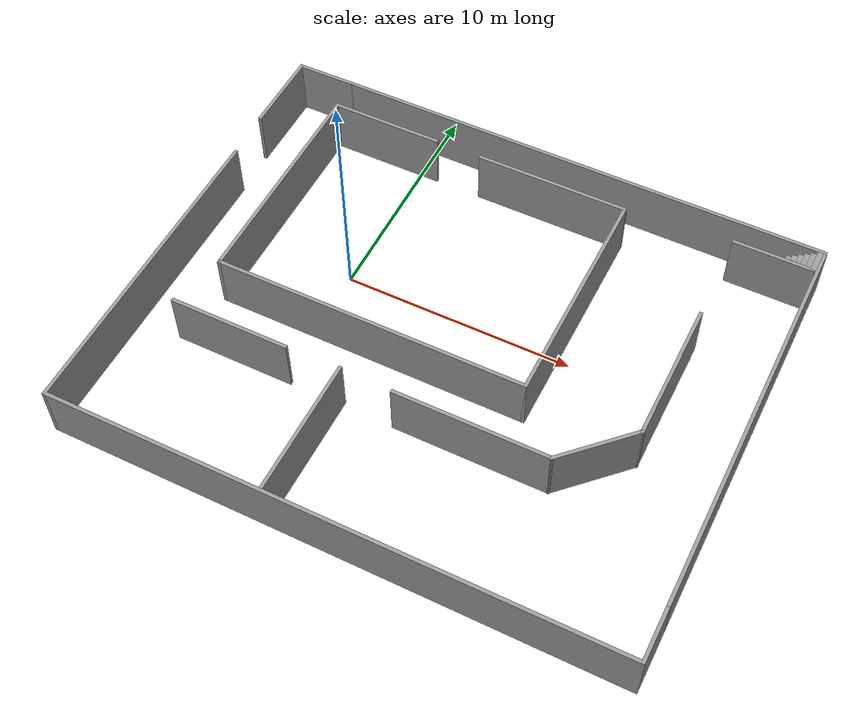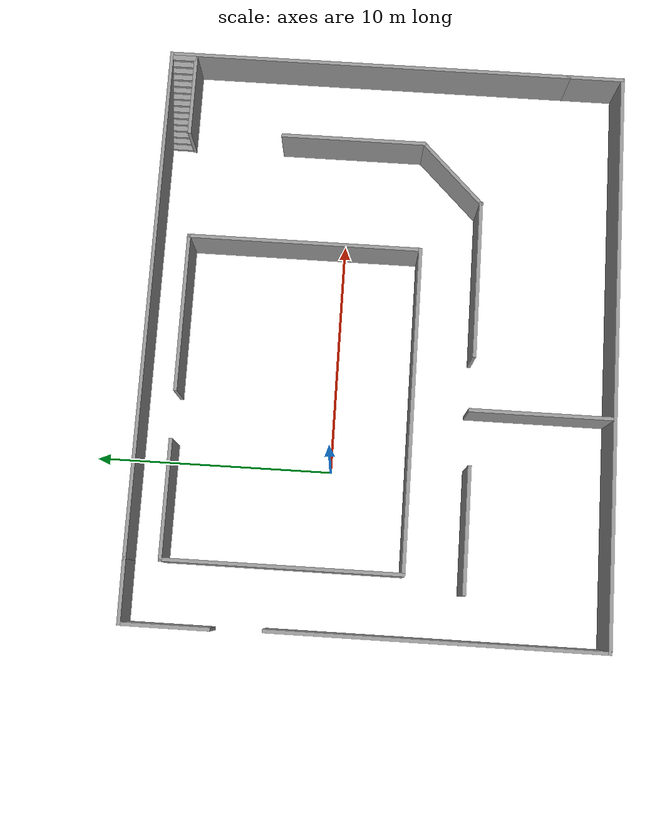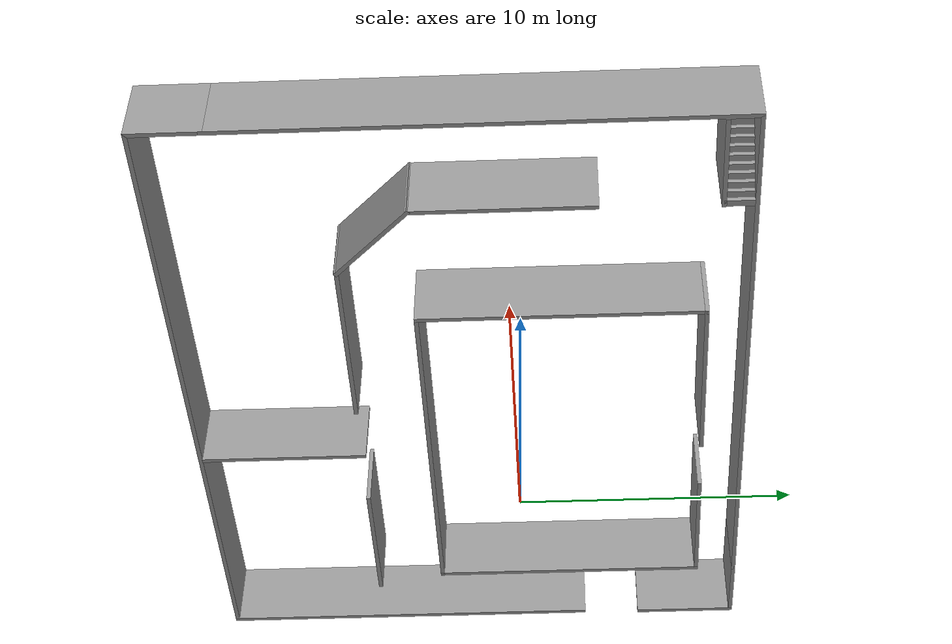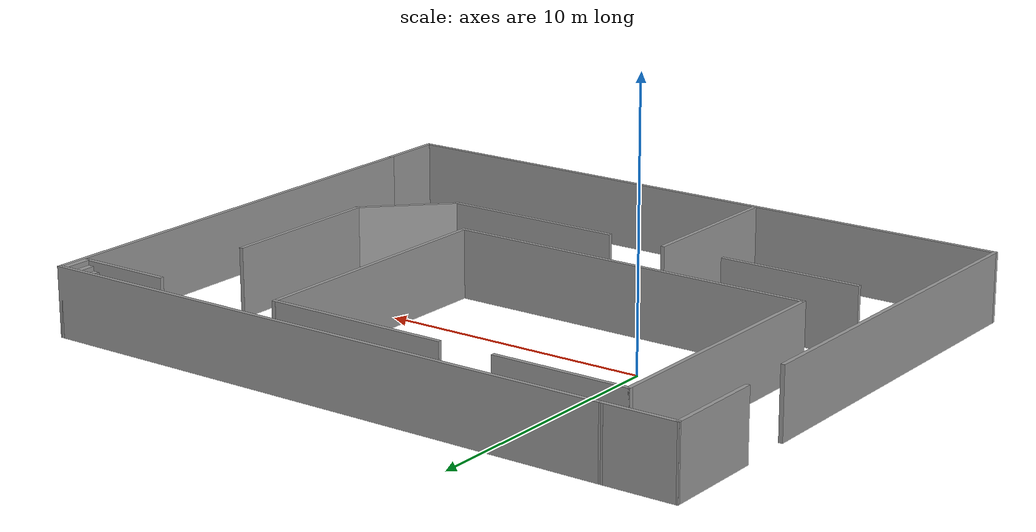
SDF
<?xml version='1.0'?>
<sdf version='1.7'>
  <model name='myworld1'>
    <pose>5.43751 -1.74851 0 0 -0 0</pose>
    <link name='Stairs_0'>
      <visual name='Stairs_0_Visual_0'>
        <pose>8.76424 9.2881 0.083333 0 -0 1.5708</pose>
        <geometry>
          <box>
            <size>1 0.233333 0.166667</size>
          </box>
        </geometry>
        <material>
          <script>
            <uri>file://media/materials/scripts/gazebo.material</uri>
            <name>Gazebo/Grey</name>
          </script>
          <ambient>1 1 1 1</ambient>
        </material>
        <meta>
          <layer>0</layer>
        </meta>
      </visual>
      <collision name='Stairs_0_Collision_0'>
        <geometry>
          <box>
            <size>1 0.233333 0.166667</size>
          </box>
        </geometry>
        <pose>8.76424 9.2881 0.083333 0 -0 1.5708</pose>
      </collision>
      <visual name='Stairs_0_Visual_1'>
        <pose>8.99757 9.2881 0.25 0 -0 1.5708</pose>
        <geometry>
          <box>
            <size>1 0.233333 0.166667</size>
          </box>
        </geometry>
        <material>
          <script>
            <uri>file://media/materials/scripts/gazebo.material</uri>
            <name>Gazebo/Grey</name>
          </script>
          <ambient>1 1 1 1</ambient>
        </material>
        <meta>
          <layer>0</layer>
        </meta>
      </visual>
      <collision name='Stairs_0_Collision_1'>
        <geometry>
          <box>
            <size>1 0.233333 0.166667</size>
          </box>
        </geometry>
        <pose>8.99757 9.2881 0.25 0 -0 1.5708</pose>
      </collision>
      <visual name='Stairs_0_Visual_2'>
        <pose>9.23091 9.2881 0.416667 0 -0 1.5708</pose>
        <geometry>
          <box>
            <size>1 0.233333 0.166667</size>
          </box>
        </geometry>
        <material>
          <script>
            <uri>file://media/materials/scripts/gazebo.material</uri>
            <name>Gazebo/Grey</name>
          </script>
          <ambient>1 1 1 1</ambient>
        </material>
        <meta>
          <layer>0</layer>
        </meta>
      </visual>
      <collision name='Stairs_0_Collision_2'>
        <geometry>
          <box>
            <size>1 0.233333 0.166667</size>
          </box>
        </geometry>
        <pose>9.23091 9.2881 0.416667 0 -0 1.5708</pose>
      </collision>
      <visual name='Stairs_0_Visual_3'>
        <pose>9.46424 9.2881 0.583333 0 -0 1.5708</pose>
        <geometry>
          <box>
            <size>1 0.233333 0.166667</size>
          </box>
        </geometry>
        <material>
          <script>
            <uri>file://media/materials/scripts/gazebo.material</uri>
            <name>Gazebo/Grey</name>
          </script>
          <ambient>1 1 1 1</ambient>
        </material>
        <meta>
          <layer>0</layer>
        </meta>
      </visual>
      <collision name='Stairs_0_Collision_3'>
        <geometry>
          <box>
            <size>1 0.233333 0.166667</size>
          </box>
        </geometry>
        <pose>9.46424 9.2881 0.583333 0 -0 1.5708</pose>
      </collision>
      <visual name='Stairs_0_Visual_4'>
        <pose>9.69758 9.2881 0.75 0 -0 1.5708</pose>
        <geometry>
          <box>
            <size>1 0.233333 0.166667</size>
          </box>
        </geometry>
        <material>
          <script>
            <uri>file://media/materials/scripts/gazebo.material</uri>
            <name>Gazebo/Grey</name>
          </script>
          <ambient>1 1 1 1</ambient>
        </material>
        <meta>
          <layer>0</layer>
        </meta>
      </visual>
      <collision name='Stairs_0_Collision_4'>
        <geometry>
          <box>
            <size>1 0.233333 0.166667</size>
          </box>
        </geometry>
        <pose>9.69758 9.2881 0.75 0 -0 1.5708</pose>
      </collision>
      <visual name='Stairs_0_Visual_5'>
        <pose>9.93091 9.2881 0.916667 0 -0 1.5708</pose>
        <geometry>
          <box>
            <size>1 0.233333 0.166667</size>
          </box>
        </geometry>
        <material>
          <script>
            <uri>file://media/materials/scripts/gazebo.material</uri>
            <name>Gazebo/Grey</name>
          </script>
          <ambient>1 1 1 1</ambient>
        </material>
        <meta>
          <layer>0</layer>
        </meta>
      </visual>
      <collision name='Stairs_0_Collision_5'>
        <geometry>
          <box>
            <size>1 0.233333 0.166667</size>
          </box>
        </geometry>
        <pose>9.93091 9.2881 0.916667 0 -0 1.5708</pose>
      </collision>
      <visual name='Stairs_0_Visual_6'>
        <pose>10.1642 9.2881 1.08333 0 -0 1.5708</pose>
        <geometry>
          <box>
            <size>1 0.233333 0.166667</size>
          </box>
        </geometry>
        <material>
          <script>
            <uri>file://media/materials/scripts/gazebo.material</uri>
            <name>Gazebo/Grey</name>
          </script>
          <ambient>1 1 1 1</ambient>
        </material>
        <meta>
          <layer>0</layer>
        </meta>
      </visual>
      <collision name='Stairs_0_Collision_6'>
        <geometry>
          <box>
            <size>1 0.233333 0.166667</size>
          </box>
        </geometry>
        <pose>10.1642 9.2881 1.08333 0 -0 1.5708</pose>
      </collision>
      <visual name='Stairs_0_Visual_7'>
        <pose>10.3976 9.2881 1.25 0 -0 1.5708</pose>
        <geometry>
          <box>
            <size>1 0.233333 0.166667</size>
          </box>
        </geometry>
        <material>
          <script>
            <uri>file://media/materials/scripts/gazebo.material</uri>
            <name>Gazebo/Grey</name>
          </script>
          <ambient>1 1 1 1</ambient>
        </material>
        <meta>
          <layer>0</layer>
        </meta>
      </visual>
      <collision name='Stairs_0_Collision_7'>
        <geometry>
          <box>
            <size>1 0.233333 0.166667</size>
          </box>
        </geometry>
        <pose>10.3976 9.2881 1.25 0 -0 1.5708</pose>
      </collision>
      <visual name='Stairs_0_Visual_8'>
        <pose>10.6309 9.2881 1.41667 0 -0 1.5708</pose>
        <geometry>
          <box>
            <size>1 0.233333 0.166667</size>
          </box>
        </geometry>
        <material>
          <script>
            <uri>file://media/materials/scripts/gazebo.material</uri>
            <name>Gazebo/Grey</name>
          </script>
          <ambient>1 1 1 1</ambient>
        </material>
        <meta>
          <layer>0</layer>
        </meta>
      </visual>
      <collision name='Stairs_0_Collision_8'>
        <geometry>
          <box>
            <size>1 0.233333 0.166667</size>
          </box>
        </geometry>
        <pose>10.6309 9.2881 1.41667 0 -0 1.5708</pose>
      </collision>
      <visual name='Stairs_0_Visual_9'>
        <pose>10.8642 9.2881 1.58333 0 -0 1.5708</pose>
        <geometry>
          <box>
            <size>1 0.233333 0.166667</size>
          </box>
        </geometry>
        <material>
          <script>
            <uri>file://media/materials/scripts/gazebo.material</uri>
            <name>Gazebo/Grey</name>
          </script>
          <ambient>1 1 1 1</ambient>
        </material>
        <meta>
          <layer>0</layer>
        </meta>
      </visual>
      <collision name='Stairs_0_Collision_9'>
        <geometry>
          <box>
            <size>1 0.233333 0.166667</size>
          </box>
        </geometry>
        <pose>10.8642 9.2881 1.58333 0 -0 1.5708</pose>
      </collision>
      <visual name='Stairs_0_Visual_10'>
        <pose>11.0976 9.2881 1.75 0 -0 1.5708</pose>
        <geometry>
          <box>
            <size>1 0.233333 0.166667</size>
          </box>
        </geometry>
        <material>
          <script>
            <uri>file://media/materials/scripts/gazebo.material</uri>
            <name>Gazebo/Grey</name>
          </script>
          <ambient>1 1 1 1</ambient>
        </material>
        <meta>
          <layer>0</layer>
        </meta>
      </visual>
      <collision name='Stairs_0_Collision_10'>
        <geometry>
          <box>
            <size>1 0.233333 0.166667</size>
          </box>
        </geometry>
        <pose>11.0976 9.2881 1.75 0 -0 1.5708</pose>
      </collision>
      <visual name='Stairs_0_Visual_11'>
        <pose>11.3309 9.2881 1.91667 0 -0 1.5708</pose>
        <geometry>
          <box>
            <size>1 0.233333 0.166667</size>
          </box>
        </geometry>
        <material>
          <script>
            <uri>file://media/materials/scripts/gazebo.material</uri>
            <name>Gazebo/Grey</name>
          </script>
          <ambient>1 1 1 1</ambient>
        </material>
        <meta>
          <layer>0</layer>
        </meta>
      </visual>
      <collision name='Stairs_0_Collision_11'>
        <geometry>
          <box>
            <size>1 0.233333 0.166667</size>
          </box>
        </geometry>
        <pose>11.3309 9.2881 1.91667 0 -0 1.5708</pose>
      </collision>
      <visual name='Stairs_0_Visual_12'>
        <pose>11.5642 9.2881 2.08333 0 -0 1.5708</pose>
        <geometry>
          <box>
            <size>1 0.233333 0.166667</size>
          </box>
        </geometry>
        <material>
          <script>
            <uri>file://media/materials/scripts/gazebo.material</uri>
            <name>Gazebo/Grey</name>
          </script>
          <ambient>1 1 1 1</ambient>
        </material>
        <meta>
          <layer>0</layer>
        </meta>
      </visual>
      <collision name='Stairs_0_Collision_12'>
        <geometry>
          <box>
            <size>1 0.233333 0.166667</size>
          </box>
        </geometry>
        <pose>11.5642 9.2881 2.08333 0 -0 1.5708</pose>
      </collision>
      <visual name='Stairs_0_Visual_13'>
        <pose>11.7976 9.2881 2.25 0 -0 1.5708</pose>
        <geometry>
          <box>
            <size>1 0.233333 0.166667</size>
          </box>
        </geometry>
        <material>
          <script>
            <uri>file://media/materials/scripts/gazebo.material</uri>
            <name>Gazebo/Grey</name>
          </script>
          <ambient>1 1 1 1</ambient>
        </material>
        <meta>
          <layer>0</layer>
        </meta>
      </visual>
      <collision name='Stairs_0_Collision_13'>
        <geometry>
          <box>
            <size>1 0.233333 0.166667</size>
          </box>
        </geometry>
        <pose>11.7976 9.2881 2.25 0 -0 1.5708</pose>
      </collision>
      <visual name='Stairs_0_Visual_14'>
        <pose>12.0309 9.2881 2.41667 0 -0 1.5708</pose>
        <geometry>
          <box>
            <size>1 0.233333 0.166667</size>
          </box>
        </geometry>
        <material>
          <script>
            <uri>file://media/materials/scripts/gazebo.material</uri>
            <name>Gazebo/Grey</name>
          </script>
          <ambient>1 1 1 1</ambient>
        </material>
        <meta>
          <layer>0</layer>
        </meta>
      </visual>
      <collision name='Stairs_0_Collision_14'>
        <geometry>
          <box>
            <size>1 0.233333 0.166667</size>
          </box>
        </geometry>
        <pose>12.0309 9.2881 2.41667 0 -0 1.5708</pose>
      </collision>
    </link>
    <link name='Wall_11'>
      <collision name='Wall_11_Collision'>
        <geometry>
          <box>
            <size>22 0.15 2.5</size>
          </box>
        </geometry>
        <pose>0 0 1.25 0 -0 0</pose>
      </collision>
      <visual name='Wall_11_Visual'>
        <pose>0 0 1.25 0 -0 0</pose>
        <geometry>
          <box>
            <size>22 0.15 2.5</size>
          </box>
        </geometry>
        <material>
          <script>
            <uri>file://media/materials/scripts/gazebo.material</uri>
            <name>Gazebo/Grey</name>
          </script>
          <ambient>1 1 1 1</ambient>
        </material>
        <meta>
          <layer>0</layer>
        </meta>
      </visual>
      <pose>1.28756 9.8497 0 0 -0 0</pose>
    </link>
    <link name='Wall_12'>
      <collision name='Wall_12_Collision'>
        <geometry>
          <box>
            <size>17.5 0.15 2.5</size>
          </box>
        </geometry>
        <pose>0 0 1.25 0 -0 0</pose>
      </collision>
      <visual name='Wall_12_Visual'>
        <pose>0 0 1.25 0 -0 0</pose>
        <geometry>
          <box>
            <size>17.5 0.15 2.5</size>
          </box>
        </geometry>
        <material>
          <script>
            <uri>file://media/materials/scripts/gazebo.material</uri>
            <name>Gazebo/Grey</name>
          </script>
          <ambient>1 1 1 1</ambient>
        </material>
        <meta>
          <layer>0</layer>
        </meta>
      </visual>
      <pose>12.2126 1.1747 0 0 -0 -1.5708</pose>
    </link>
    <link name='Wall_13'>
      <collision name='Wall_13_Collision'>
        <geometry>
          <box>
            <size>2.5 0.15 2.5</size>
          </box>
        </geometry>
        <pose>0 0 1.25 0 -0 0</pose>
      </collision>
      <visual name='Wall_13_Visual'>
        <pose>0 0 1.25 0 -0 0</pose>
        <geometry>
          <box>
            <size>2.5 0.15 2.5</size>
          </box>
        </geometry>
        <material>
          <script>
            <uri>file://media/materials/scripts/gazebo.material</uri>
            <name>Gazebo/Grey</name>
          </script>
          <ambient>1 1 1 1</ambient>
        </material>
        <meta>
          <layer>0</layer>
        </meta>
      </visual>
      <pose>12.2126 -8.6753 0 0 -0 -1.5708</pose>
    </link>
    <link name='Wall_14'>
      <collision name='Wall_14_Collision'>
        <geometry>
          <box>
            <size>24.5 0.15 2.5</size>
          </box>
        </geometry>
        <pose>0 0 1.25 0 -0 0</pose>
      </collision>
      <visual name='Wall_14_Visual'>
        <pose>0 0 1.25 0 -0 0</pose>
        <geometry>
          <box>
            <size>24.5 0.15 2.5</size>
          </box>
        </geometry>
        <material>
          <script>
            <uri>file://media/materials/scripts/gazebo.material</uri>
            <name>Gazebo/Grey</name>
          </script>
          <ambient>1 1 1 1</ambient>
        </material>
        <meta>
          <layer>0</layer>
        </meta>
      </visual>
      <pose>0.037564 -9.8503 0 0 -0 3.14159</pose>
    </link>
    <link name='Wall_15'>
      <collision name='Wall_15_Collision'>
        <geometry>
          <box>
            <size>14 0.15 2.5</size>
          </box>
        </geometry>
        <pose>0 0 1.25 0 -0 0</pose>
      </collision>
      <visual name='Wall_15_Visual'>
        <pose>0 0 1.25 0 -0 0</pose>
        <geometry>
          <box>
            <size>14 0.15 2.5</size>
          </box>
        </geometry>
        <material>
          <script>
            <uri>file://media/materials/scripts/gazebo.material</uri>
            <name>Gazebo/Grey</name>
          </script>
          <ambient>1 1 1 1</ambient>
        </material>
        <meta>
          <layer>0</layer>
        </meta>
      </visual>
      <pose>-12.1374 -2.9253 0 0 -0 1.5708</pose>
    </link>
    <link name='Wall_17'>
      <collision name='Wall_17_Collision'>
        <geometry>
          <box>
            <size>3.75 0.15 2.5</size>
          </box>
        </geometry>
        <pose>0 0 1.25 0 -0 0</pose>
      </collision>
      <visual name='Wall_17_Visual'>
        <pose>0 0 1.25 0 -0 0</pose>
        <geometry>
          <box>
            <size>3.75 0.15 2.5</size>
          </box>
        </geometry>
        <material>
          <script>
            <uri>file://media/materials/scripts/gazebo.material</uri>
            <name>Gazebo/Grey</name>
          </script>
          <ambient>1 1 1 1</ambient>
        </material>
        <meta>
          <layer>0</layer>
        </meta>
      </visual>
      <pose>-12.212 8.02926 0 0 -0 1.5708</pose>
    </link>
    <link name='Wall_18'>
      <collision name='Wall_18_Collision'>
        <geometry>
          <box>
            <size>2.72462 0.15 2.5</size>
          </box>
        </geometry>
        <pose>0 0 1.25 0 -0 0</pose>
      </collision>
      <visual name='Wall_18_Visual'>
        <pose>0 0 1.25 0 -0 0</pose>
        <geometry>
          <box>
            <size>2.72462 0.15 2.5</size>
          </box>
        </geometry>
        <material>
          <script>
            <uri>file://media/materials/scripts/gazebo.material</uri>
            <name>Gazebo/Grey</name>
          </script>
          <ambient>1 1 1 1</ambient>
        </material>
        <meta>
          <layer>0</layer>
        </meta>
      </visual>
      <pose>-10.9247 9.83948 0 0 -0 0.00794</pose>
    </link>
    <link name='Wall_20'>
      <collision name='Wall_20_Collision'>
        <geometry>
          <box>
            <size>5.25 0.15 2.5</size>
          </box>
        </geometry>
        <pose>0 0 1.25 0 -0 0</pose>
      </collision>
      <visual name='Wall_20_Visual'>
        <pose>0 0 1.25 0 -0 0</pose>
        <geometry>
          <box>
            <size>5.25 0.15 2.5</size>
          </box>
        </geometry>
        <material>
          <script>
            <uri>file://media/materials/scripts/gazebo.material</uri>
            <name>Gazebo/Grey</name>
          </script>
          <ambient>1 1 1 1</ambient>
        </material>
        <meta>
          <layer>0</layer>
        </meta>
      </visual>
      <pose>-7.6305 -3.92809 0 0 -0 0</pose>
    </link>
    <link name='Wall_22'>
      <collision name='Wall_22_Collision'>
        <geometry>
          <box>
            <size>6 0.15 2.5</size>
          </box>
        </geometry>
        <pose>0 0 1.25 0 -0 0</pose>
      </collision>
      <visual name='Wall_22_Visual'>
        <pose>0 0 1.25 0 -0 0</pose>
        <geometry>
          <box>
            <size>6 0.15 2.5</size>
          </box>
        </geometry>
        <material>
          <script>
            <uri>file://media/materials/scripts/gazebo.material</uri>
            <name>Gazebo/Grey</name>
          </script>
          <ambient>1 1 1 1</ambient>
        </material>
        <meta>
          <layer>0</layer>
        </meta>
      </visual>
      <pose>-2.69825 -6.79275 0 0 -0 -1.5708</pose>
    </link>
    <link name='Wall_24'>
      <collision name='Wall_24_Collision'>
        <geometry>
          <box>
            <size>3.5 0.15 2.5</size>
          </box>
        </geometry>
        <pose>0 0 1.25 0 -0 0</pose>
      </collision>
      <visual name='Wall_24_Visual'>
        <pose>0 0 1.25 0 -0 0</pose>
        <geometry>
          <box>
            <size>3.5 0.15 2.5</size>
          </box>
        </geometry>
        <material>
          <script>
            <uri>file://media/materials/scripts/gazebo.material</uri>
            <name>Gazebo/Grey</name>
          </script>
          <ambient>1 1 1 1</ambient>
        </material>
        <meta>
          <layer>0</layer>
        </meta>
      </visual>
      <pose>10.3611 8.78752 0 0 -0 0</pose>
    </link>
    <link name='Wall_26'>
      <collision name='Wall_26_Collision'>
        <geometry>
          <box>
            <size>6.75 0.15 2.5</size>
          </box>
        </geometry>
        <pose>0 0 1.25 0 -0 0</pose>
      </collision>
      <visual name='Wall_26_Visual'>
        <pose>0 0 1.25 0 -0 0</pose>
        <geometry>
          <box>
            <size>6.75 0.15 2.5</size>
          </box>
        </geometry>
        <material>
          <script>
            <uri>file://media/materials/scripts/gazebo.material</uri>
            <name>Gazebo/Grey</name>
          </script>
          <ambient>1 1 1 1</ambient>
        </material>
        <meta>
          <layer>0</layer>
        </meta>
      </visual>
      <pose>2.9149 -3.92426 0 0 -0 0</pose>
    </link>
    <link name='Wall_27'>
      <collision name='Wall_27_Collision'>
        <geometry>
          <box>
            <size>3.75 0.15 2.5</size>
          </box>
        </geometry>
        <pose>0 0 1.25 0 -0 0</pose>
      </collision>
      <visual name='Wall_27_Visual'>
        <pose>0 0 1.25 0 -0 0</pose>
        <geometry>
          <box>
            <size>3.75 0.15 2.5</size>
          </box>
        </geometry>
        <material>
          <script>
            <uri>file://media/materials/scripts/gazebo.material</uri>
            <name>Gazebo/Grey</name>
          </script>
          <ambient>1 1 1 1</ambient>
        </material>
        <meta>
          <layer>0</layer>
        </meta>
      </visual>
      <pose>7.4877 -2.65146 0 0 -0 0.785398</pose>
    </link>
    <link name='Wall_28'>
      <collision name='Wall_28_Collision'>
        <geometry>
          <box>
            <size>6.25 0.15 2.5</size>
          </box>
        </geometry>
        <pose>0 0 1.25 0 -0 0</pose>
      </collision>
      <visual name='Wall_28_Visual'>
        <pose>0 0 1.25 0 -0 0</pose>
        <geometry>
          <box>
            <size>6.25 0.15 2.5</size>
          </box>
        </geometry>
        <material>
          <script>
            <uri>file://media/materials/scripts/gazebo.material</uri>
            <name>Gazebo/Grey</name>
          </script>
          <ambient>1 1 1 1</ambient>
        </material>
        <meta>
          <layer>0</layer>
        </meta>
      </visual>
      <pose>8.76049 1.67133 0 0 -0 1.5708</pose>
    </link>
    <link name='Wall_4'>
      <collision name='Wall_4_Collision'>
        <geometry>
          <box>
            <size>5 0.15 2.5</size>
          </box>
        </geometry>
        <pose>0 0 1.25 0 -0 0</pose>
      </collision>
      <visual name='Wall_4_Visual'>
        <pose>0 0 1.25 0 -0 0</pose>
        <geometry>
          <box>
            <size>5 0.15 2.5</size>
          </box>
        </geometry>
        <material>
          <script>
            <uri>file://media/materials/scripts/gazebo.material</uri>
            <name>Gazebo/Grey</name>
          </script>
          <ambient>1 1 1 1</ambient>
        </material>
        <meta>
          <layer>0</layer>
        </meta>
      </visual>
      <pose>-7.1521 8.40153 0 0 -0 0</pose>
    </link>
    <link name='Wall_6'>
      <collision name='Wall_6_Collision'>
        <geometry>
          <box>
            <size>10 0.15 2.5</size>
          </box>
        </geometry>
        <pose>0 0 1.25 0 -0 0</pose>
      </collision>
      <visual name='Wall_6_Visual'>
        <pose>0 0 1.25 0 -0 0</pose>
        <geometry>
          <box>
            <size>10 0.15 2.5</size>
          </box>
        </geometry>
        <material>
          <script>
            <uri>file://media/materials/scripts/gazebo.material</uri>
            <name>Gazebo/Grey</name>
          </script>
          <ambient>1 1 1 1</ambient>
        </material>
        <meta>
          <layer>0</layer>
        </meta>
      </visual>
      <pose>-9.57709 3.47653 0 0 -0 -1.5708</pose>
    </link>
    <link name='Wall_7'>
      <collision name='Wall_7_Collision'>
        <geometry>
          <box>
            <size>13.75 0.15 2.5</size>
          </box>
        </geometry>
        <pose>0 0 1.25 0 -0 0</pose>
      </collision>
      <visual name='Wall_7_Visual'>
        <pose>0 0 1.25 0 -0 0</pose>
        <geometry>
          <box>
            <size>13.75 0.15 2.5</size>
          </box>
        </geometry>
        <material>
          <script>
            <uri>file://media/materials/scripts/gazebo.material</uri>
            <name>Gazebo/Grey</name>
          </script>
          <ambient>1 1 1 1</ambient>
        </material>
        <meta>
          <layer>0</layer>
        </meta>
      </visual>
      <pose>-2.7771 -1.44847 0 0 -0 0</pose>
    </link>
    <link name='Wall_8'>
      <collision name='Wall_8_Collision'>
        <geometry>
          <box>
            <size>10 0.15 2.5</size>
          </box>
        </geometry>
        <pose>0 0 1.25 0 -0 0</pose>
      </collision>
      <visual name='Wall_8_Visual'>
        <pose>0 0 1.25 0 -0 0</pose>
        <geometry>
          <box>
            <size>10 0.15 2.5</size>
          </box>
        </geometry>
        <material>
          <script>
            <uri>file://media/materials/scripts/gazebo.material</uri>
            <name>Gazebo/Grey</name>
          </script>
          <ambient>1 1 1 1</ambient>
        </material>
        <meta>
          <layer>0</layer>
        </meta>
      </visual>
      <pose>4.0229 3.47653 0 0 -0 1.5708</pose>
    </link>
    <link name='Wall_9'>
      <collision name='Wall_9_Collision'>
        <geometry>
          <box>
            <size>6.75 0.15 2.5</size>
          </box>
        </geometry>
        <pose>0 0 1.25 0 -0 0</pose>
      </collision>
      <visual name='Wall_9_Visual'>
        <pose>0 0 1.25 0 -0 0</pose>
        <geometry>
          <box>
            <size>6.75 0.15 2.5</size>
          </box>
        </geometry>
        <material>
          <script>
            <uri>file://media/materials/scripts/gazebo.material</uri>
            <name>Gazebo/Grey</name>
          </script>
          <ambient>1 1 1 1</ambient>
        </material>
        <meta>
          <layer>0</layer>
        </meta>
      </visual>
      <pose>0.722905 8.40153 0 0 -0 3.14159</pose>
    </link>
    <static>1</static>
  </model>
</sdf>
